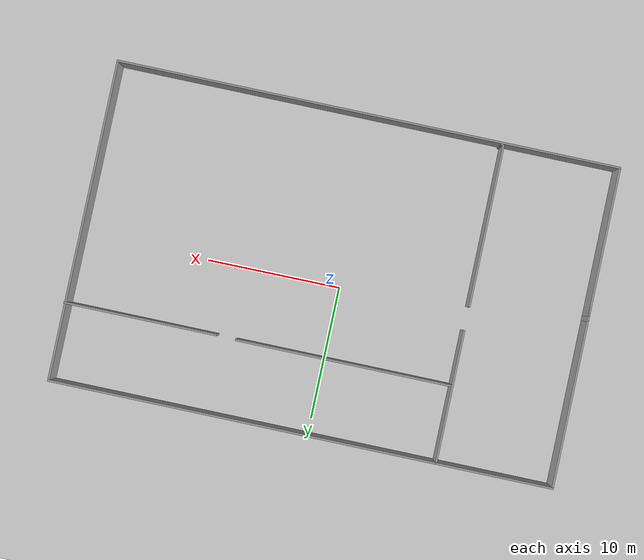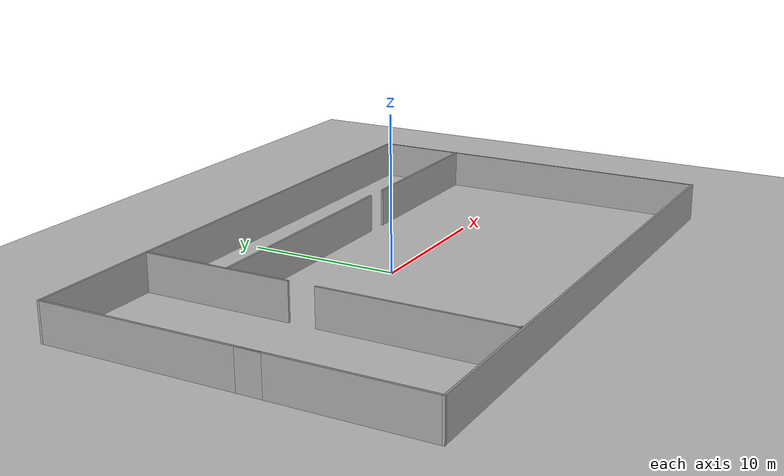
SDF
<sdf version="1.6">
 <world name="default">
  <light name="sun" type="directional">
   <pose>0 0 10 0 -0 0</pose>
   <diffuse>0.8 0.8 0.8 1</diffuse>
   <specular>0.1 0.1 0.1 1</specular>
   <attenuation>
    <range>1000</range>
    <constant>0.9</constant>
    <linear>0.01</linear>
    <quadratic>0.001</quadratic>
   </attenuation>
   <direction>-0.5 0.5 -1</direction>
  </light>
  <model name="ground_plane">
   <static>1</static>
   <link name="link">
    <collision name="collision">
     <geometry><plane><normal>0 0 1</normal><size>100 100</size></plane></geometry>
     <surface><friction><ode><mu>100</mu><mu2>50</mu2></ode></friction></surface>
    </collision>
    <visual name="visual">
     <cast_shadows>0</cast_shadows>
     <geometry><plane><normal>0 0 1</normal><size>100 100</size></plane></geometry>
     <material>
      <script><uri>file://media/materials/scripts/gazebo.material</uri><name>Gazebo/Grey</name></script>
     </material>
    </visual>
   </link>
  </model>
  <gravity>0 0 -9.8</gravity>
  <magnetic_field>6e-06 2.3e-05 -4.2e-05</magnetic_field>
  <atmosphere type="adiabatic"/>
  <physics name="default_physics" default="0" type="ode">
   <max_step_size>0.001</max_step_size>
   <real_time_factor>1</real_time_factor>
   <real_time_update_rate>1000</real_time_update_rate>
  </physics>
  <scene><ambient>0.4 0.4 0.4 1</ambient><background>0.7 0.7 0.7 1</background><shadows>1</shadows></scene>
  <spherical_coordinates>
   <surface_model>EARTH_WGS84</surface_model>
   <latitude_deg>0</latitude_deg>
   <longitude_deg>0</longitude_deg>
   <elevation>0</elevation>
   <heading_deg>0</heading_deg>
  </spherical_coordinates>
  <model name="warehouse_3">
   <pose>0.5397 -0.93447 0 0 -0 0</pose>
   <link name="Wall_41">
    <collision name="Wall_41_Collision">
     <geometry><box><size>11.25 0.15 2.5</size></box></geometry>
     <pose>0 0 1.25 0 -0 0</pose>
    </collision>
    <visual name="Wall_41_Visual">
     <pose>0 0 1.25 0 -0 0</pose>
     <geometry><box><size>11.25 0.15 2.5</size></box></geometry>
     <material>
      <script><uri>file://media/materials/scripts/gazebo.material</uri><name>Gazebo/Grey</name></script>
      <ambient>1 1 1 1</ambient>
     </material>
    </visual>
    <pose>-18.9501 -6.5 0 0 0 -1.5708</pose>
   </link>
   <link name="Wall_42">
    <collision name="Wall_42_Collision">
     <geometry><box><size>38 0.15 2.5</size></box></geometry>
     <pose>0 0 1.25 0 -0 0</pose>
    </collision>
    <visual name="Wall_42_Visual">
     <pose>0 0 1.25 0 -0 0</pose>
     <geometry><box><size>38 0.15 2.5</size></box></geometry>
     <material>
      <script><uri>file://media/materials/scripts/gazebo.material</uri><name>Gazebo/Grey</name></script>
      <ambient>1 1 1 1</ambient>
     </material>
    </visual>
    <pose>-0.025142 -12.05 0 0 -0 0</pose>
   </link>
   <link name="Wall_43">
    <collision name="Wall_43_Collision">
     <geometry><box><size>24.25 0.15 2.5</size></box></geometry>
     <pose>0 0 1.25 0 -0 0</pose>
    </collision>
    <visual name="Wall_43_Visual">
     <pose>0 0 1.25 0 -0 0</pose>
     <geometry><box><size>24.25 0.15 2.5</size></box></geometry>
     <material>
      <script><uri>file://media/materials/scripts/gazebo.material</uri><name>Gazebo/Grey</name></script>
      <ambient>1 1 1 1</ambient>
     </material>
    </visual>
    <pose>18.8999 0 0 0 -0 1.5708</pose>
   </link>
   <link name="Wall_44">
    <collision name="Wall_44_Collision">
     <geometry><box><size>38 0.15 2.5</size></box></geometry>
     <pose>0 0 1.25 0 -0 0</pose>
    </collision>
    <visual name="Wall_44_Visual">
     <pose>0 0 1.25 0 -0 0</pose>
     <geometry><box><size>38 0.15 2.5</size></box></geometry>
     <material>
      <script><uri>file://media/materials/scripts/gazebo.material</uri><name>Gazebo/Grey</name></script>
      <ambient>1 1 1 1</ambient>
     </material>
    </visual>
    <pose>-0.025142 12.05 0 0 -0 3.14159</pose>
   </link>
   <link name="Wall_45">
    <collision name="Wall_45_Collision">
     <geometry><box><size>12.75 0.15 2.5</size></box></geometry>
     <pose>0 0 1.25 0 -0 0</pose>
    </collision>
    <visual name="Wall_45_Visual">
     <pose>0 0 1.25 0 -0 0</pose>
     <geometry><box><size>12.75 0.15 2.5</size></box></geometry>
     <material>
      <script><uri>file://media/materials/scripts/gazebo.material</uri><name>Gazebo/Grey</name></script>
      <ambient>1 1 1 1</ambient>
     </material>
    </visual>
    <pose>-18.9501 5.75 0 0 0 -1.5708</pose>
   </link>
   <link name="Wall_46">
    <collision name="Wall_46_Collision">
     <geometry><box><size>1.75 0.15 2.5</size></box></geometry>
     <pose>0 0 1.25 0 -0 0</pose>
    </collision>
    <visual name="Wall_46_Visual">
     <pose>0 0 1.25 0 -0 0</pose>
     <geometry><box><size>1.75 0.15 2.5</size></box></geometry>
     <material>
      <script><uri>file://media/materials/scripts/gazebo.material</uri><name>Gazebo/Grey</name></script>
      <ambient>1 1 1 1</ambient>
     </material>
    </visual>
    <pose>-18.9501 -1.35 0 0 0 -1.5708</pose>
   </link>
   <link name="Wall_48">
    <collision name="Wall_48_Collision">
     <geometry><box><size>10 0.15 2.5</size></box></geometry>
     <pose>0 0 1.25 0 -0 0</pose>
    </collision>
    <visual name="Wall_48_Visual">
     <pose>0 0 1.25 0 -0 0</pose>
     <geometry><box><size>10 0.15 2.5</size></box></geometry>
     <material>
      <script><uri>file://media/materials/scripts/gazebo.material</uri><name>Gazebo/Grey</name></script>
      <ambient>1 1 1 1</ambient>
     </material>
    </visual>
    <pose>-10.2084 7.05156 0 0 0 -1.5708</pose>
   </link>
   <link name="Wall_50">
    <collision name="Wall_50_Collision">
     <geometry><box><size>12.25 0.15 2.5</size></box></geometry>
     <pose>0 0 1.25 0 -0 0</pose>
    </collision>
    <visual name="Wall_50_Visual">
     <pose>0 0 1.25 0 -0 0</pose>
     <geometry><box><size>12.25 0.15 2.5</size></box></geometry>
     <material>
      <script><uri>file://media/materials/scripts/gazebo.material</uri><name>Gazebo/Grey</name></script>
      <ambient>1 1 1 1</ambient>
     </material>
    </visual>
    <pose>-10.2139 -5.82185 0 0 0 -1.5708</pose>
   </link>
   <link name="Wall_51">
    <collision name="Wall_51_Collision">
     <geometry><box><size>0.284086 0.15 2.5</size></box></geometry>
     <pose>0 0 1.25 0 -0 0</pose>
    </collision>
    <visual name="Wall_51_Visual">
     <pose>0 0 1.25 0 -0 0</pose>
     <geometry><box><size>0.284086 0.15 2.5</size></box></geometry>
     <material>
      <script><uri>file://media/materials/scripts/gazebo.material</uri><name>Gazebo/Grey</name></script>
      <ambient>1 1 1 1</ambient>
     </material>
    </visual>
    <pose>-10.151 -11.8952 0 0 0 -0.355622</pose>
   </link>
   <link name="Wall_53">
    <collision name="Wall_53_Collision">
     <geometry><box><size>16.25 0.15 2.5</size></box></geometry>
     <pose>0 0 1.25 0 -0 0</pose>
    </collision>
    <visual name="Wall_53_Visual">
     <pose>0 0 1.25 0 -0 0</pose>
     <geometry><box><size>16.25 0.15 2.5</size></box></geometry>
     <material>
      <script><uri>file://media/materials/scripts/gazebo.material</uri><name>Gazebo/Grey</name></script>
      <ambient>1 1 1 1</ambient>
     </material>
    </visual>
    <pose>-2.02272 6.25068 0 0 -0 0</pose>
   </link>
   <link name="Wall_55">
    <collision name="Wall_55_Collision">
     <geometry><box><size>11.5 0.15 2.5</size></box></geometry>
     <pose>0 0 1.25 0 -0 0</pose>
    </collision>
    <visual name="Wall_55_Visual">
     <pose>0 0 1.25 0 -0 0</pose>
     <geometry><box><size>11.5 0.15 2.5</size></box></geometry>
     <material>
      <script><uri>file://media/materials/scripts/gazebo.material</uri><name>Gazebo/Grey</name></script>
      <ambient>1 1 1 1</ambient>
     </material>
    </visual>
    <pose>13.2751 6.20644 0 0 -0 0</pose>
   </link>
   <static>1</static>
  </model>
 </world>
</sdf>
